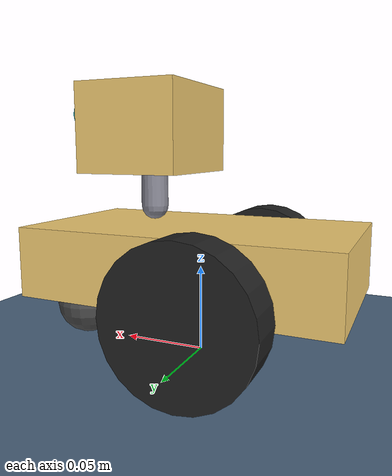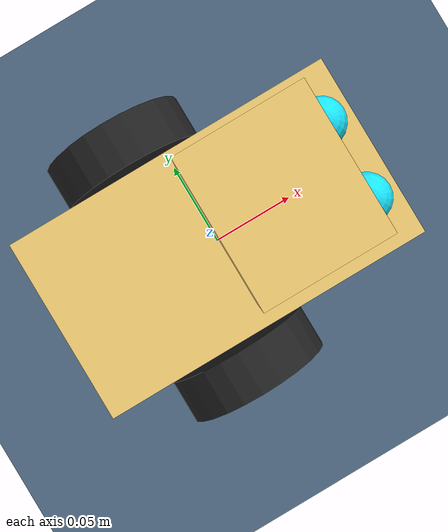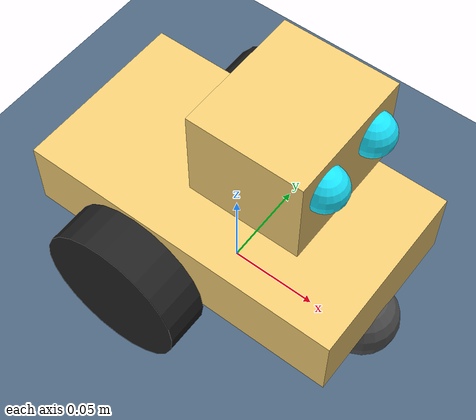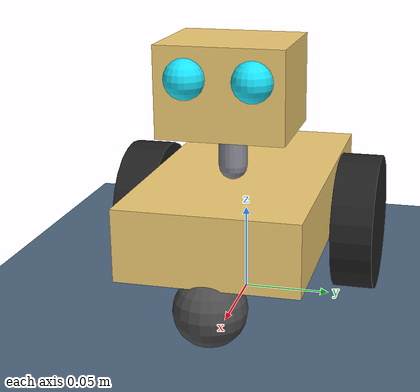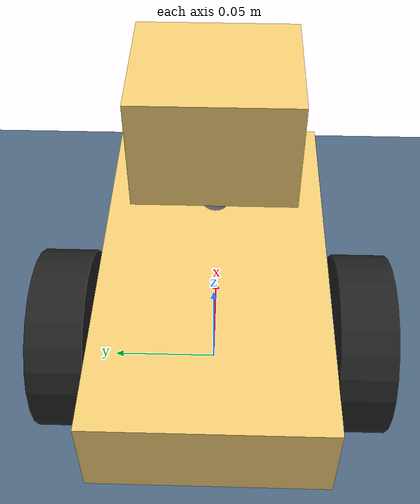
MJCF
<mujoco model="kel_wheeled">
  <compiler angle="radian" autolimits="true"/>
  <option timestep="0.005" gravity="0 0 -9.81"/>

  <default>
    <geom friction="1 0.5 0.5"/>
    <joint damping="0.05"/>
  </default>

  <worldbody>
    <light pos="0.25 0.2 1.0" dir="0 0 -1" diffuse="0.95 0.95 0.95"/>
    <geom name="floor" type="plane" size="3 3 0.1" rgba="0.30 0.40 0.50 1"/>

    <body name="chassis" pos="0 0 0.055">
      <freejoint/>
      <!-- cardboard body -->
      <geom name="body" type="box" size="0.09 0.05 0.02" rgba="0.95 0.80 0.45 1" density="200"/>

      <!-- two driven wheels -->
      <body name="left_wheel" pos="-0.02 0.065 -0.015">
        <joint name="left_wheel" type="hinge" axis="0 1 0"/>
        <geom type="cylinder" size="0.04 0.012" euler="1.5708 0 0"
              rgba="0.13 0.13 0.13 1" density="300"/>
      </body>
      <body name="right_wheel" pos="-0.02 -0.065 -0.015">
        <joint name="right_wheel" type="hinge" axis="0 1 0"/>
        <geom type="cylinder" size="0.04 0.012" euler="1.5708 0 0"
              rgba="0.13 0.13 0.13 1" density="300"/>
      </body>

      <!-- front caster: a low-friction ball that just rolls/slides along -->
      <geom name="caster" type="sphere" pos="0.08 0 -0.035" size="0.02"
            rgba="0.30 0.30 0.30 1" friction="0.1 0.05 0.05" density="200"/>

      <!-- head + neck that looks around -->
      <body name="neck" pos="0.03 0 0.03">
        <joint name="head_pan" type="hinge" axis="0 0 1" range="-1.2 1.2"/>
        <geom type="capsule" fromto="0 0 0 0 0 0.03" size="0.008"
              rgba="0.55 0.55 0.60 1" density="100"/>
        <body name="head" pos="0 0 0.045">
          <joint name="head_tilt" type="hinge" axis="0 1 0" range="-0.6 0.6"/>
          <geom name="head" type="box" size="0.03 0.035 0.025"
                rgba="0.95 0.80 0.45 1" density="100"/>
          <!-- two glowing eyes on the front face -->
          <geom type="sphere" pos="0.03 0.018 0.008" size="0.011" rgba="0.10 0.90 1.0 1"/>
          <geom type="sphere" pos="0.03 -0.018 0.008" size="0.011" rgba="0.10 0.90 1.0 1"/>
        </body>
      </body>
    </body>
  </worldbody>

  <actuator>
    <!-- wheels: velocity-driven (this is how Kel would 'drive forward' / 'turn') -->
    <velocity name="left_wheel" joint="left_wheel" kv="0.05"/>
    <velocity name="right_wheel" joint="right_wheel" kv="0.05"/>
    <!-- head servos: position-driven, to look around -->
    <position name="head_pan" joint="head_pan" kp="0.5"/>
    <position name="head_tilt" joint="head_tilt" kp="0.5"/>
  </actuator>
</mujoco>
